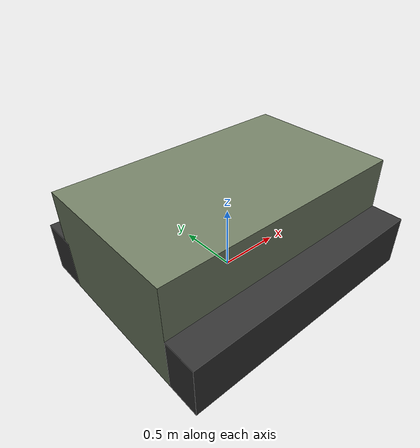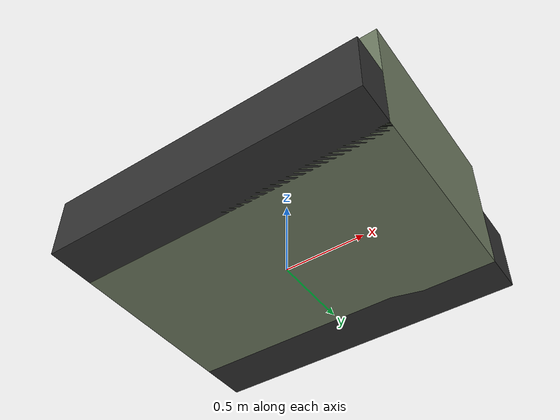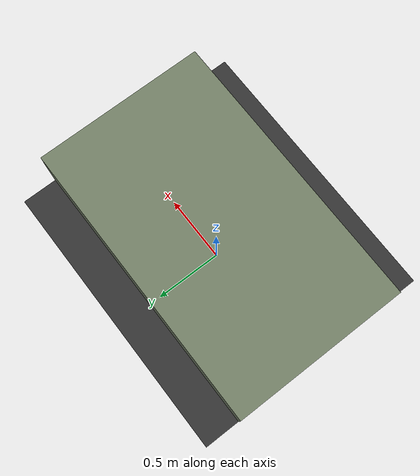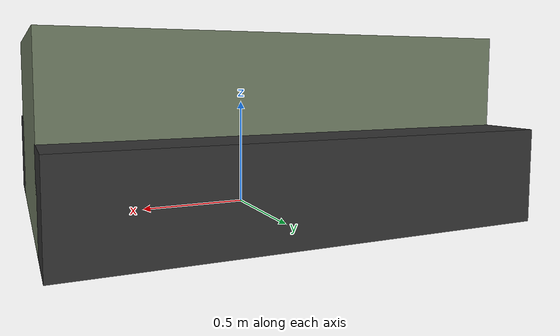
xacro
<?xml version="1.0"?>
<robot xmlns:xacro="http://www.ros.org/wiki/xacro" name="ss500">

  <!-- base_footprint: 지면 투영 프레임 -->
  <link name="base_footprint"/>

  <joint name="base_footprint_joint" type="fixed">
    <parent link="base_footprint"/>
    <child link="base_link"/>
    <origin xyz="0 0 0.4" rpy="0 0 0"/>
  </joint>

  <!-- base_link: 차체 중심 -->
  <link name="base_link">
    <visual>
      <geometry>
        <box size="2.0 1.2 0.8"/>
      </geometry>
      <material name="olive">
        <color rgba="0.45 0.5 0.4 1"/>
      </material>
    </visual>
    <collision>
      <geometry>
        <box size="2.0 1.2 0.8"/>
      </geometry>
    </collision>
    <inertial>
      <mass value="1000.0"/>
      <inertia ixx="106.67" iyy="153.33" izz="113.33"
               ixy="0" ixz="0" iyz="0"/>
    </inertial>
  </link>

  <!-- 좌측 궤도 -->
  <link name="left_track">
    <visual>
      <geometry>
        <box size="2.0 0.3 0.4"/>
      </geometry>
      <material name="dark_grey">
        <color rgba="0.2 0.2 0.2 1"/>
      </material>
    </visual>
    <collision>
      <geometry>
        <box size="2.0 0.3 0.4"/>
      </geometry>
    </collision>
    <inertial>
      <mass value="80.0"/>
      <inertia ixx="4.27" iyy="27.47" izz="24.27"
               ixy="0" ixz="0" iyz="0"/>
    </inertial>
  </link>

  <joint name="left_track_joint" type="fixed">
    <parent link="base_link"/>
    <child link="left_track"/>
    <origin xyz="0 0.7 -0.2" rpy="0 0 0"/>
  </joint>

  <!-- 우측 궤도 -->
  <link name="right_track">
    <visual>
      <geometry>
        <box size="2.0 0.3 0.4"/>
      </geometry>
      <material name="dark_grey">
        <color rgba="0.2 0.2 0.2 1"/>
      </material>
    </visual>
    <collision>
      <geometry>
        <box size="2.0 0.3 0.4"/>
      </geometry>
    </collision>
    <inertial>
      <mass value="80.0"/>
      <inertia ixx="4.27" iyy="27.47" izz="24.27"
               ixy="0" ixz="0" iyz="0"/>
    </inertial>
  </link>

  <joint name="right_track_joint" type="fixed">
    <parent link="base_link"/>
    <child link="right_track"/>
    <origin xyz="0 -0.7 -0.2" rpy="0 0 0"/>
  </joint>

  <!-- IMU -->
  <link name="imu_link">
    <inertial>
      <mass value="0.1"/>
      <inertia ixx="0.0001" iyy="0.0001" izz="0.0001"
               ixy="0" ixz="0" iyz="0"/>
    </inertial>
  </link>

  <joint name="imu_joint" type="fixed">
    <parent link="base_link"/>
    <child link="imu_link"/>
    <origin xyz="0 0 0.1" rpy="0 0 0"/>
  </joint>

  <!-- Camera: 전면 (0°) -->
  <link name="camera_front_link">
    <visual>
      <geometry>
        <box size="0.05 0.08 0.05"/>
      </geometry>
      <material name="camera_black">
        <color rgba="0.1 0.1 0.1 1"/>
      </material>
    </visual>
    <inertial>
      <mass value="0.2"/>
      <inertia ixx="0.0002" iyy="0.0002" izz="0.0002"
               ixy="0" ixz="0" iyz="0"/>
    </inertial>
  </link>

  <joint name="camera_front_joint" type="fixed">
    <parent link="base_link"/>
    <child link="camera_front_link"/>
    <origin xyz="0.9 0 0.3" rpy="0 0 0"/>
  </joint>

  <!-- Camera: 좌전방 (~60°) -->
  <link name="camera_left_link">
    <visual>
      <geometry>
        <box size="0.05 0.08 0.05"/>
      </geometry>
      <material name="camera_black">
        <color rgba="0.1 0.1 0.1 1"/>
      </material>
    </visual>
    <inertial>
      <mass value="0.2"/>
      <inertia ixx="0.0002" iyy="0.0002" izz="0.0002"
               ixy="0" ixz="0" iyz="0"/>
    </inertial>
  </link>

  <joint name="camera_left_joint" type="fixed">
    <parent link="base_link"/>
    <child link="camera_left_link"/>
    <!-- 차체 좌전방 모서리, yaw +60° (1.047 rad) -->
    <origin xyz="0.7 0.5 0.3" rpy="0 0 1.047"/>
  </joint>

  <!-- Camera: 우전방 (~60°) -->
  <link name="camera_right_link">
    <visual>
      <geometry>
        <box size="0.05 0.08 0.05"/>
      </geometry>
      <material name="camera_black">
        <color rgba="0.1 0.1 0.1 1"/>
      </material>
    </visual>
    <inertial>
      <mass value="0.2"/>
      <inertia ixx="0.0002" iyy="0.0002" izz="0.0002"
               ixy="0" ixz="0" iyz="0"/>
    </inertial>
  </link>

  <joint name="camera_right_joint" type="fixed">
    <parent link="base_link"/>
    <child link="camera_right_link"/>
    <!-- 차체 우전방 모서리, yaw -60° (-1.047 rad) -->
    <origin xyz="0.7 -0.5 0.3" rpy="0 0 -1.047"/>
  </joint>

  <!-- GPS -->
  <link name="gps_link">
    <inertial>
      <mass value="0.1"/>
      <inertia ixx="0.0001" iyy="0.0001" izz="0.0001"
               ixy="0" ixz="0" iyz="0"/>
    </inertial>
  </link>

  <joint name="gps_joint" type="fixed">
    <parent link="base_link"/>
    <child link="gps_link"/>
    <origin xyz="-0.3 0 0.5" rpy="0 0 0"/>
  </joint>

</robot>
